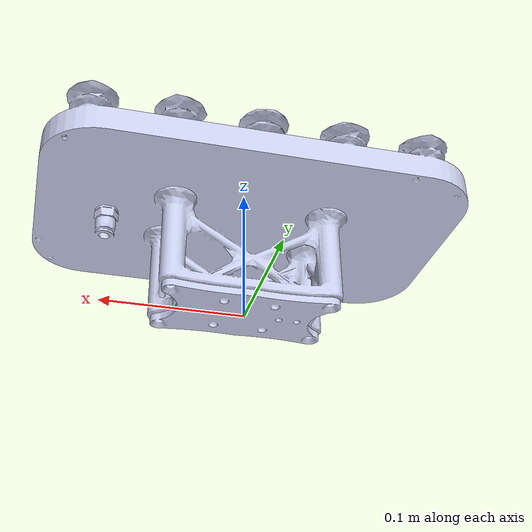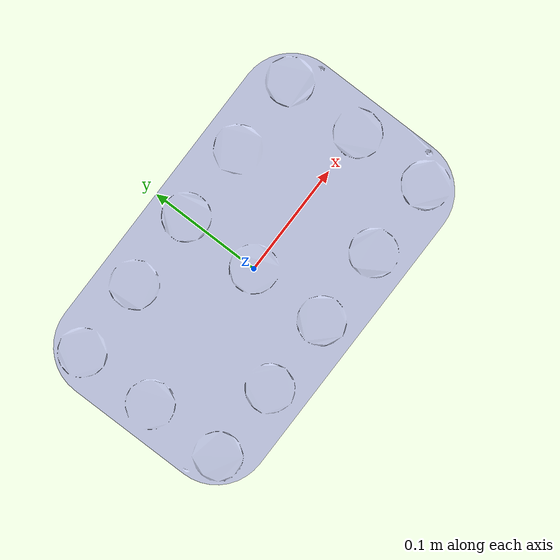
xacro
<?xml version="1.0" encoding="utf-8"?>

<robot name="grip_exon" xmlns:xacro="http://ros.org/wiki/xacro">

  <!-- Including xacro -->
  <xacro:include filename="$(find grip_exon)/urdf/grip_exon.urdf.xacro" />

  <!-- Virtual link for visualization -->
  <link name="world"/>

  <!-- Calling the xacro -->
  <xacro:grip_exon parent="world">
    <origin xyz="0 0 0" rpy="0 0 0"/>
  </xacro:grip_exon>

</robot>

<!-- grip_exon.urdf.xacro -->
<robot name="grip_exon" xmlns:xacro="http://ros.org/wiki/xacro">

  <xacro:macro name="grip_exon" params="parent *origin">

  <joint name="grip_exon_base_joint" type="fixed">
      <parent link="${parent}"/>
      <child link="RIF"/>
      <xacro:insert_block name="origin"/>
  </joint>

  <link
    name="RIF">
    <inertial>
      <origin
        xyz="0.00021269 2.1562E-14 0.0025"
        rpy="0 0 0" />
      <mass
        value="0.02908" />
      <inertia
        ixx="8.9458E-06"
        ixy="1.4285E-18"
        ixz="-4.9596E-21"
        iyy="2.8336E-05"
        iyz="1.2484E-18"
        izz="3.7163E-05" />
    </inertial>
    <visual>
      <origin
        xyz="0 0 0"
        rpy="0 0 0" />
      <geometry>
        <mesh
          filename="package://grip_exon/meshes/RIF.STL" />
      </geometry>
      <material
        name="">
        <color
          rgba="0.79216 0.81961 0.93333 1" />
      </material>
    </visual>
    <collision>
      <origin
        xyz="0 0 0"
        rpy="0 0 0" />
      <geometry>
        <mesh
          filename="package://grip_exon/meshes/RIF.STL" />
      </geometry>
    </collision>
  </link>
  <link
    name="GRIPPER">
    <inertial>
      <origin
        xyz="0.00070773 -0.00049669 -0.043144"
        rpy="0 0 0" />
      <mass
        value="0.69541" />
      <inertia
        ixx="0.001292"
        ixy="-3.4933E-08"
        ixz="-1.1642E-07"
        iyy="0.0030317"
        iyz="1.7201E-06"
        izz="0.0041665" />
    </inertial>
    <visual>
      <origin
        xyz="0 0 0"
        rpy="0 0 0" />
      <geometry>
        <mesh
          filename="package://grip_exon/meshes/GRIPPER.STL" />
      </geometry>
      <material
        name="">
        <color
          rgba="0.79216 0.81961 0.93333 1" />
      </material>
    </visual>
    <collision>
      <origin
        xyz="0 0 0"
        rpy="0 0 0" />
      <geometry>
        <mesh
          filename="package://grip_exon/meshes/GRIPPER.STL" />
      </geometry>
    </collision>
  </link>
  <joint
    name="GRIPPER"
    type="fixed">
    <origin
      xyz="0 0 0.1211"
      rpy="0 0 0" />
    <parent
      link="RIF" />
    <child
      link="GRIPPER" />
    <axis
      xyz="0 0 0" />
  </joint>

  </xacro:macro>
</robot>
